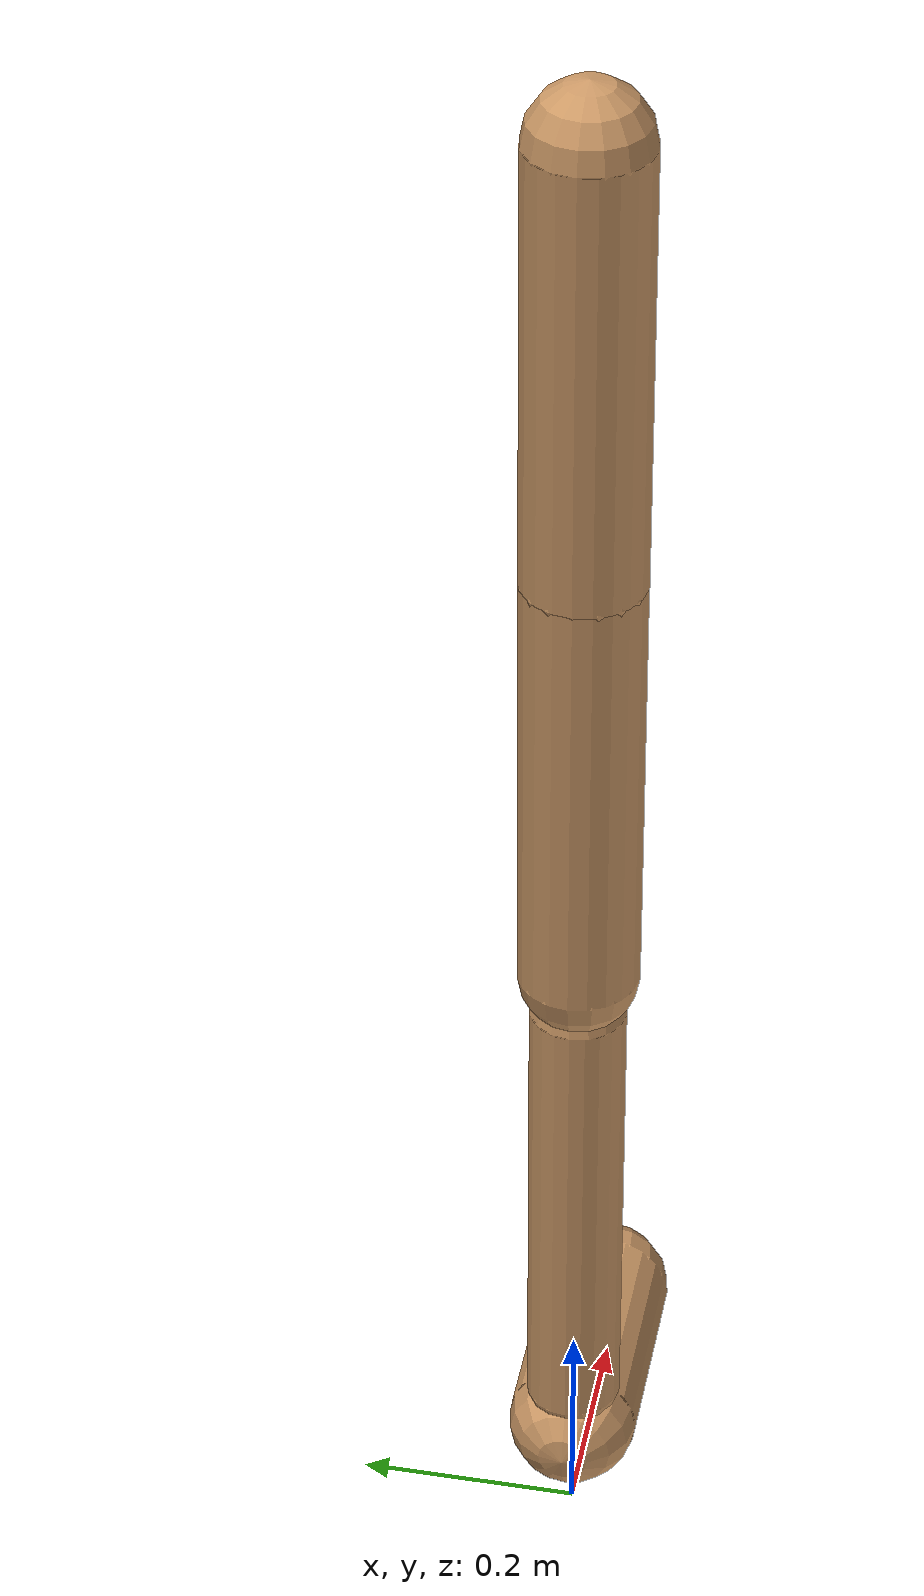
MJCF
<mujoco model="walker2d">
  <compiler angle="degree" coordinate="global" inertiafromgeom="true" />
  <default>
    <joint armature="0.01" damping=".1" limited="true" />
    <geom conaffinity="0" condim="3" contype="1" density="1000" friction="0.8 .1 .1" rgba="0.8 0.6 .4 1" />
  </default>
  <option integrator="RK4" timestep="0.002" />
  <worldbody>

    <body name="torso" pos="0 0 -0.08713441585428396">
      <joint armature="0" axis="1 0 0" damping="0" limited="false" name="ignorex" pos="0 0 0" stiffness="0" type="slide" />
      <joint armature="0" axis="0 0 1" damping="0" limited="false" name="ignorez" pos="0 0 0" ref="1.25" stiffness="0" type="slide" />
      <joint armature="0" axis="0 1 0" damping="0" limited="false" name="ignorey" pos="0 0 0" stiffness="0" type="hinge" />
      <geom fromto="0 0 1.45 0 0 1.05" name="torso_geom" size="0.054170728896905565" type="capsule" />
      <body name="thigh">
        <joint axis="0 -1 0" name="thigh_joint" pos="0 0 1.05" range="-150 0" type="hinge" />
        <geom fromto="0.0 0.0 1.05 0.0 0.0 0.6412741969836082" name="thigh_geom" size="0.05392250254550617" type="capsule" />
        <body name="leg" pos="0.0 0.0 0.041274196983608236">
          <joint axis="0 -1 0" name="leg_joint" pos="0 0 0.6" range="-150 0" type="hinge" />
          <geom fromto="0.0 0.0 0.6 0.0 0.0 0.14586021887067577" name="leg_geom" size="0.043138002036404936" type="capsule" />
          <body name="foot" pos="0.0 0.0 0.04586021887067576">
            <joint axis="0 -1 0" name="foot_joint" pos="0 0 0.1" range="-45 45" type="hinge" />
            <geom fromto="0.0 0.0 0.1 0.1862496110966713 0.0 0.1" name="foot_geom" size="0.05950873161587389" type="capsule" />
          </body>
        </body>
      </body>

      <body name="thigh_left">
        <joint axis="0 -1 0" name="thigh_left_joint" pos="0 0 1.05" range="-150 0" type="hinge" />
        <geom fromto="0.0 0.0 1.05 0.0 0.0 0.6412741969836082" name="thigh_left_geom" rgba=".7 .3 .6 1" size="0.05392250254550617" type="capsule" />
        <body name="leg_left" pos="0.0 0.0 0.041274196983608236">
          <joint axis="0 -1 0" name="leg_left_joint" pos="0 0 0.6" range="-150 0" type="hinge" />
          <geom fromto="0.0 0.0 0.6 0.0 0.0 0.14586021887067577" name="leg_left_geom" rgba=".7 .3 .6 1" size="0.043138002036404936" type="capsule" />
          <body name="foot_left" pos="0.0 0.0 0.04586021887067576">
            <joint axis="0 -1 0" name="foot_left_joint" pos="0 0 0.1" range="-45 45" type="hinge" />
            <geom fromto="0.0 0.0 0.1 0.1862496110966713 0.0 0.1" name="foot_left_geom" rgba=".7 .3 .6 1" size="0.05950873161587389" type="capsule" />
          </body>
        </body>
      </body>
    </body>
  </worldbody>
  <actuator>

    <motor ctrllimited="true" ctrlrange="-1.0 1.0" gear="100" joint="thigh_joint" />
    <motor ctrllimited="true" ctrlrange="-1.0 1.0" gear="100" joint="leg_joint" />
    <motor ctrllimited="true" ctrlrange="-1.0 1.0" gear="100" joint="foot_joint" />
    <motor ctrllimited="true" ctrlrange="-1.0 1.0" gear="100" joint="thigh_left_joint" />
    <motor ctrllimited="true" ctrlrange="-1.0 1.0" gear="100" joint="leg_left_joint" />
    <motor ctrllimited="true" ctrlrange="-1.0 1.0" gear="100" joint="foot_left_joint" />

  </actuator>
</mujoco>
